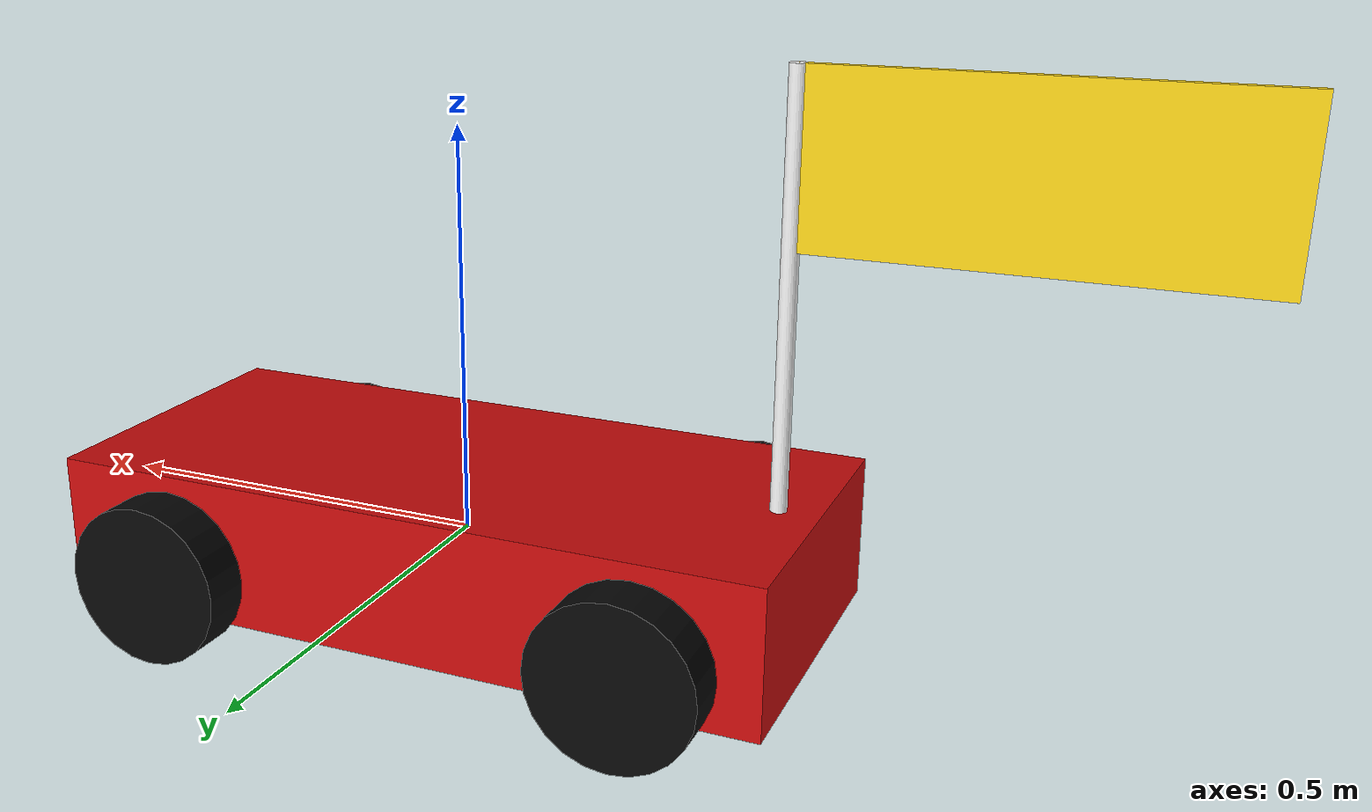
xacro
<?xml version="1.0"?>
<robot name="robot" xmlns:xacro="http://www.ros.org/wiki/xacro">
  <xacro:property name="length" value="0.9"/>
  <xacro:property name="width"  value="0.4"/>
  <xacro:property name="height" value="0.18"/>
  <xacro:property name="mass"   value="5"/>
  <xacro:property name="wheel_x" value="0.3"/>
  <xacro:property name="wheel_y" value="0.23"/>

  <material name="red"><color rgba="0.8 0.05 0.05 1"/></material>
  <material name="black"><color rgba="0.03 0.03 0.03 1"/></material>

  <link name="base_link">
    <visual><geometry><box size="${length} ${width} ${height}"/></geometry><material name="red"/></visual>
    <collision><geometry><box size="${length} ${width} ${height}"/></geometry></collision>
    <inertial>
      <mass value="${mass}"/>
      <inertia ixx="${mass*(width*width+height*height)/12}" ixy="0" ixz="0"
               iyy="${mass*(length*length+height*height)/12}" iyz="0"
               izz="${mass*(length*length+width*width)/12}"/>
    </inertial>
  </link>

  <xacro:macro name="wheel" params="name x y">
    <link name="${name}">
      <visual><geometry><cylinder radius="0.1" length="0.06"/></geometry><material name="black"/></visual>
      <collision><geometry><cylinder radius="0.1" length="0.06"/></geometry></collision>
      <inertial><mass value="0.5"/><inertia ixx="0.0014" ixy="0" ixz="0" iyy="0.0014" iyz="0" izz="0.0025"/></inertial>
    </link>
    <joint name="${name}_joint" type="continuous">
      <parent link="base_link"/><child link="${name}"/>
      <origin xyz="${x} ${y} -0.03" rpy="-1.5708 0 0"/><axis xyz="0 0 1"/>
    </joint>
    <gazebo reference="${name}"><mu1>1.0</mu1><mu2>0.1</mu2></gazebo>
  </xacro:macro>

  <xacro:wheel name="front_left_wheel"  x="${wheel_x}"  y="${wheel_y}"/>
  <xacro:wheel name="front_right_wheel" x="${wheel_x}"  y="${-wheel_y}"/>
  <xacro:wheel name="rear_left_wheel"   x="${-wheel_x}" y="${wheel_y}"/>
  <xacro:wheel name="rear_right_wheel"  x="${-wheel_x}" y="${-wheel_y}"/>

<!-- FLAG REMOVE THIS MR.TAMIM ONCE DONE ALRIGHT -->
  <material name="white"><color rgba="0.95 0.95 0.95 1"/></material>
  <material name="yellow"><color rgba="1 0.85 0.1 1"/></material>

  <link name="flag_pole">
    <visual><geometry><cylinder radius="0.01" length="0.5"/></geometry><material name="white"/></visual>
    <collision><geometry><cylinder radius="0.01" length="0.5"/></geometry></collision>
    <inertial><mass value="0.05"/><inertia ixx="0.0001" ixy="0" ixz="0" iyy="0.0001" iyz="0" izz="0.0001"/></inertial>
  </link>
  <joint name="flag_pole_joint" type="fixed">
    <parent link="base_link"/><child link="flag_pole"/>
    <origin xyz="${-length/2 + 0.05} 0 ${height/2 + 0.25}"/>
  </joint>

  <link name="flag">
    <visual>
      <geometry><box size="0.5 0.01 0.2"/></geometry>
      <material name="yellow"/>
    </visual>
    <collision><geometry><box size="0.5 0.01 0.2"/></geometry></collision>
    <inertial><mass value="0.05"/><inertia ixx="0.0001" ixy="0" ixz="0" iyy="0.0001" iyz="0" izz="0.0001"/></inertial>
  </link>
  <joint name="flag_joint" type="fixed">
    <parent link="flag_pole"/><child link="flag"/>
    <origin xyz="-0.25 0 0.15"/>
  </joint>
<!-- HERE IS THE END OF GLAG -->

  <gazebo>
    <plugin filename="gz-sim-diff-drive-system" name="gz::sim::systems::DiffDrive">
      <left_joint>front_left_wheel_joint</left_joint>
      <left_joint>rear_left_wheel_joint</left_joint>
      <right_joint>front_right_wheel_joint</right_joint>
      <right_joint>rear_right_wheel_joint</right_joint>
      <wheel_separation>0.46</wheel_separation>
      <wheel_radius>0.1</wheel_radius>
      <topic>/cmd_vel</topic>
      <odom_topic>/odom</odom_topic>
      <frame_id>odom</frame_id>
      <child_frame_id>base_link</child_frame_id>
    </plugin>
    <plugin filename="gz-sim-joint-state-publisher-system" name="gz::sim::systems::JointStatePublisher">
      <topic>/joint_states</topic>
    </plugin>
  </gazebo>
</robot>
